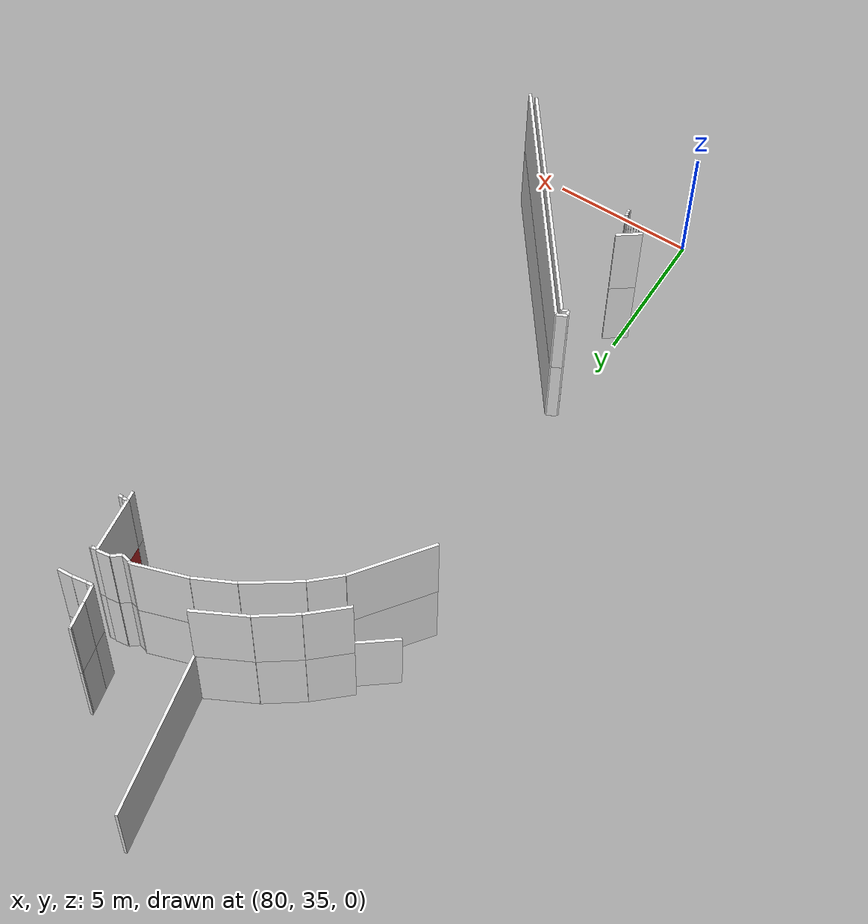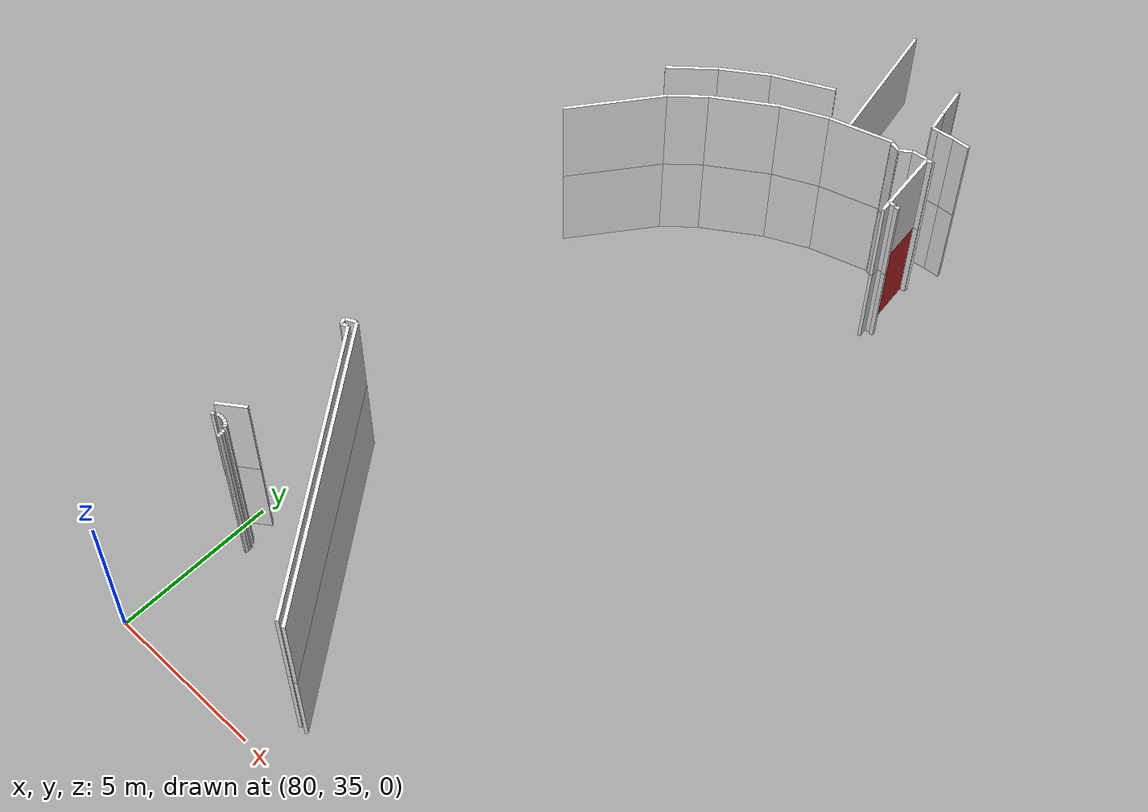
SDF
<sdf version="1.6">
 <world name="default">
  <model name="wall_87.9_57.8_1.5">
   <static>true</static>
   <pose>87.93499999999767 57.77499999990687 1.5 0 0 -1.4509545189031208</pose>
   <link name="link">
    <visual name="visual">
     <geometry><box><size>1.9237983263743257 0.1 3</size></box></geometry>
     <material>
      <script><uri>file://media/materials/scripts/gazebo.material</uri><name>Gazebo/Red</name></script>
     </material>
    </visual>
    <collision name="collision"><geometry><box><size>1.9237983263743257 0.1 3</size></box></geometry></collision>
   </link>
  </model>
  <model name="wall_80.4_43.4_1.5">
   <static>true</static>
   <pose>80.37000000002445 43.43000000016764 1.5 0 0 0.4182243299392765</pose>
   <link name="link">
    <visual name="visual">
     <geometry><box><size>0.19697715605979885 0.1 3</size></box></geometry>
     <material>
      <script><uri>file://media/materials/scripts/gazebo.material</uri><name>Gazebo/White</name></script>
     </material>
    </visual>
    <collision name="collision"><geometry><box><size>0.19697715605979885 0.1 3</size></box></geometry></collision>
   </link>
  </model>
  <model name="wall_83.1_39.9_1.5">
   <static>true</static>
   <pose>83.10500000001048 39.88000000012107 1.5 0 0 -0.9358171018698879</pose>
   <link name="link">
    <visual name="visual">
     <geometry><box><size>8.918323833668834 0.1 3</size></box></geometry>
     <material>
      <script><uri>file://media/materials/scripts/gazebo.material</uri><name>Gazebo/White</name></script>
     </material>
    </visual>
    <collision name="collision"><geometry><box><size>8.918323833668834 0.1 3</size></box></geometry></collision>
   </link>
  </model>
  <model name="wall_80.6_38.8_1.5">
   <static>true</static>
   <pose>80.64500000001863 38.80499999993481 1.5 0 0 1.4601391059049407</pose>
   <link name="link">
    <visual name="visual">
     <geometry><box><size>0.0905538516971156 0.1 3</size></box></geometry>
     <material>
      <script><uri>file://media/materials/scripts/gazebo.material</uri><name>Gazebo/White</name></script>
     </material>
    </visual>
    <collision name="collision"><geometry><box><size>0.0905538516971156 0.1 3</size></box></geometry></collision>
   </link>
  </model>
  <model name="wall_80.6_38.9_1.5">
   <static>true</static>
   <pose>80.64500000001863 38.890000000130385 1.5 0 0 1.695151321341658</pose>
   <link name="link">
    <visual name="visual">
     <geometry><box><size>0.08062257755807112 0.1 3</size></box></geometry>
     <material>
      <script><uri>file://media/materials/scripts/gazebo.material</uri><name>Gazebo/White</name></script>
     </material>
    </visual>
    <collision name="collision"><geometry><box><size>0.08062257755807112 0.1 3</size></box></geometry></collision>
   </link>
  </model>
  <model name="wall_80.6_39.0_1.5">
   <static>true</static>
   <pose>80.625 38.96999999997206 1.5 0 0 1.9295669989791453</pose>
   <link name="link">
    <visual name="visual">
     <geometry><box><size>0.0854400370967353 0.1 3</size></box></geometry>
     <material>
      <script><uri>file://media/materials/scripts/gazebo.material</uri><name>Gazebo/White</name></script>
     </material>
    </visual>
    <collision name="collision"><geometry><box><size>0.0854400370967353 0.1 3</size></box></geometry></collision>
   </link>
  </model>
  <model name="wall_80.5_39.1_1.5">
   <static>true</static>
   <pose>80.53500000000349 39.110000000102445 1.5 0 0 2.2655346024190655</pose>
   <link name="link">
    <visual name="visual">
     <geometry><box><size>0.07810249679454152 0.1 3</size></box></geometry>
     <material>
      <script><uri>file://media/materials/scripts/gazebo.material</uri><name>Gazebo/White</name></script>
     </material>
    </visual>
    <collision name="collision"><geometry><box><size>0.07810249679454152 0.1 3</size></box></geometry></collision>
   </link>
  </model>
  <model name="wall_80.5_39.2_1.5">
   <static>true</static>
   <pose>80.47500000000582 39.16500000003725 1.5 0 0 2.521343169416129</pose>
   <link name="link">
    <visual name="visual">
     <geometry><box><size>0.08602325256784608 0.1 3</size></box></geometry>
     <material>
      <script><uri>file://media/materials/scripts/gazebo.material</uri><name>Gazebo/White</name></script>
     </material>
    </visual>
    <collision name="collision"><geometry><box><size>0.08602325256784608 0.1 3</size></box></geometry></collision>
   </link>
  </model>
  <model name="wall_80.4_39.2_1.5">
   <static>true</static>
   <pose>80.39999999999418 39.205000000074506 1.5 0 0 2.7828219805284427</pose>
   <link name="link">
    <visual name="visual">
     <geometry><box><size>0.08544003755999831 0.1 3</size></box></geometry>
     <material>
      <script><uri>file://media/materials/scripts/gazebo.material</uri><name>Gazebo/White</name></script>
     </material>
    </visual>
    <collision name="collision"><geometry><box><size>0.08544003755999831 0.1 3</size></box></geometry></collision>
   </link>
  </model>
  <model name="wall_80.3_39.2_1.5">
   <static>true</static>
   <pose>80.32000000000698 39.22500000009313 1.5 0 0 3.0172376617295393</pose>
   <link name="link">
    <visual name="visual">
     <geometry><box><size>0.08062257741367569 0.1 3</size></box></geometry>
     <material>
      <script><uri>file://media/materials/scripts/gazebo.material</uri><name>Gazebo/White</name></script>
     </material>
    </visual>
    <collision name="collision"><geometry><box><size>0.08062257741367569 0.1 3</size></box></geometry></collision>
   </link>
  </model>
  <model name="wall_80.2_39.2_1.5">
   <static>true</static>
   <pose>80.23500000001513 39.22999999998137 1.5 0 0 3.141592653589793</pose>
   <link name="link">
    <visual name="visual">
     <geometry><box><size>0.09000000002561137 0.1 3</size></box></geometry>
     <material>
      <script><uri>file://media/materials/scripts/gazebo.material</uri><name>Gazebo/White</name></script>
     </material>
    </visual>
    <collision name="collision"><geometry><box><size>0.09000000002561137 0.1 3</size></box></geometry></collision>
   </link>
  </model>
  <model name="wall_80.1_39.2_1.5">
   <static>true</static>
   <pose>80.14999999999418 39.21999999997206 1.5 0 0 -2.8966139902917303</pose>
   <link name="link">
    <visual name="visual">
     <geometry><box><size>0.08246211253268232 0.1 3</size></box></geometry>
     <material>
      <script><uri>file://media/materials/scripts/gazebo.material</uri><name>Gazebo/White</name></script>
     </material>
    </visual>
    <collision name="collision"><geometry><box><size>0.08246211253268232 0.1 3</size></box></geometry></collision>
   </link>
  </model>
  <model name="wall_80.2_39.6_1.5">
   <static>true</static>
   <pose>80.15499999999884 39.64500000001863 1.5 0 0 0.6279812908789976</pose>
   <link name="link">
    <visual name="visual">
     <geometry><box><size>0.9021086410927485 0.1 3</size></box></geometry>
     <material>
      <script><uri>file://media/materials/scripts/gazebo.material</uri><name>Gazebo/White</name></script>
     </material>
    </visual>
    <collision name="collision"><geometry><box><size>0.9021086410927485 0.1 3</size></box></geometry></collision>
   </link>
  </model>
  <model name="wall_88.0_58.8_1.5">
   <static>true</static>
   <pose>88.01500000001397 58.769999999785796 1.5 0 0 -1.1071487177940904</pose>
   <link name="link">
    <visual name="visual">
     <geometry><box><size>0.022360679795822902 0.1 3</size></box></geometry>
     <material>
      <script><uri>file://media/materials/scripts/gazebo.material</uri><name>Gazebo/White</name></script>
     </material>
    </visual>
    <collision name="collision">
     <geometry><box><size>0.022360679795822902 0.1 3</size></box></geometry>
    </collision>
   </link>
  </model>
  <model name="wall_87.9_58.7_1.5">
   <static>true</static>
   <pose>87.9200000000128 58.74499999987893 1.5 0 0 -2.992702706990747</pose>
   <link name="link">
    <visual name="visual">
     <geometry><box><size>0.20223748414268597 0.1 3</size></box></geometry>
     <material>
      <script><uri>file://media/materials/scripts/gazebo.material</uri><name>Gazebo/White</name></script>
     </material>
    </visual>
    <collision name="collision"><geometry><box><size>0.20223748414268597 0.1 3</size></box></geometry></collision>
   </link>
  </model>
  <model name="wall_88.1_56.8_1.5">
   <static>true</static>
   <pose>88.14499999998952 56.83499999996275 1.5 0 0 0.15660187831921837</pose>
   <link name="link">
    <visual name="visual">
     <geometry><box><size>0.19235384065968367 0.1 3</size></box></geometry>
     <material>
      <script><uri>file://media/materials/scripts/gazebo.material</uri><name>Gazebo/White</name></script>
     </material>
    </visual>
    <collision name="collision"><geometry><box><size>0.19235384065968367 0.1 3</size></box></geometry></collision>
   </link>
  </model>
  <model name="wall_88.2_56.8_1.5">
   <static>true</static>
   <pose>88.24499999999534 56.83499999996275 1.5 0 0 -1.2490457747265609</pose>
   <link name="link">
    <visual name="visual">
     <geometry><box><size>0.031622776852017344 0.1 3</size></box></geometry>
     <material>
      <script><uri>file://media/materials/scripts/gazebo.material</uri><name>Gazebo/White</name></script>
     </material>
    </visual>
    <collision name="collision">
     <geometry><box><size>0.031622776852017344 0.1 3</size></box></geometry>
    </collision>
   </link>
  </model>
  <model name="wall_88.3_56.8_1.5">
   <static>true</static>
   <pose>88.31500000000233 56.824999999953434 1.5 0 0 0.07677189311872727</pose>
   <link name="link">
    <visual name="visual">
     <geometry><box><size>0.13038404812726748 0.1 3</size></box></geometry>
     <material>
      <script><uri>file://media/materials/scripts/gazebo.material</uri><name>Gazebo/White</name></script>
     </material>
    </visual>
    <collision name="collision"><geometry><box><size>0.13038404812726748 0.1 3</size></box></geometry></collision>
   </link>
  </model>
  <model name="wall_80.1_54.2_1.5">
   <static>true</static>
   <pose>80.07499999998254 54.16500000003725 1.5 0 0 0.9359099816356786</pose>
   <link name="link">
    <visual name="visual">
     <geometry><box><size>3.018111992368174 0.1 3</size></box></geometry>
     <material>
      <script><uri>file://media/materials/scripts/gazebo.material</uri><name>Gazebo/White</name></script>
     </material>
    </visual>
    <collision name="collision"><geometry><box><size>3.018111992368174 0.1 3</size></box></geometry></collision>
   </link>
  </model>
  <model name="wall_81.4_55.8_1.5">
   <static>true</static>
   <pose>81.41499999997905 55.79000000003725 1.5 0 0 0.7444853337953005</pose>
   <link name="link">
    <visual name="visual">
     <geometry><box><size>1.2101652781804741 0.1 3</size></box></geometry>
     <material>
      <script><uri>file://media/materials/scripts/gazebo.material</uri><name>Gazebo/White</name></script>
     </material>
    </visual>
    <collision name="collision"><geometry><box><size>1.2101652781804741 0.1 3</size></box></geometry></collision>
   </link>
  </model>
  <model name="wall_82.7_56.8_1.5">
   <static>true</static>
   <pose>82.7049999999872 56.78000000002794 1.5 0 0 0.6015335773054936</pose>
   <link name="link">
    <visual name="visual">
     <geometry><box><size>2.0498048685846277 0.1 3</size></box></geometry>
     <material>
      <script><uri>file://media/materials/scripts/gazebo.material</uri><name>Gazebo/White</name></script>
     </material>
    </visual>
    <collision name="collision"><geometry><box><size>2.0498048685846277 0.1 3</size></box></geometry></collision>
   </link>
  </model>
  <model name="wall_84.2_57.7_1.5">
   <static>true</static>
   <pose>84.20999999999185 57.67999999993481 1.5 0 0 0.45145309163045305</pose>
   <link name="link">
    <visual name="visual">
     <geometry><box><size>1.4669696657345486 0.1 3</size></box></geometry>
     <material>
      <script><uri>file://media/materials/scripts/gazebo.material</uri><name>Gazebo/White</name></script>
     </material>
    </visual>
    <collision name="collision"><geometry><box><size>1.4669696657345486 0.1 3</size></box></geometry></collision>
   </link>
  </model>
  <model name="wall_85.8_58.3_1.5">
   <static>true</static>
   <pose>85.79000000000815 58.29000000003725 1.5 0 0 0.30535858012147843</pose>
   <link name="link">
    <visual name="visual">
     <geometry><box><size>1.9292485584238948 0.1 3</size></box></geometry>
     <material>
      <script><uri>file://media/materials/scripts/gazebo.material</uri><name>Gazebo/White</name></script>
     </material>
    </visual>
    <collision name="collision"><geometry><box><size>1.9292485584238948 0.1 3</size></box></geometry></collision>
   </link>
  </model>
  <model name="wall_86.7_58.6_1.5">
   <static>true</static>
   <pose>86.72500000000582 58.55499999993481 1.5 0 0 -1.0303768294346956</pose>
   <link name="link">
    <visual name="visual">
     <geometry><box><size>0.058309519172461015 0.1 3</size></box></geometry>
     <material>
      <script><uri>file://media/materials/scripts/gazebo.material</uri><name>Gazebo/White</name></script>
     </material>
    </visual>
    <collision name="collision">
     <geometry><box><size>0.058309519172461015 0.1 3</size></box></geometry>
    </collision>
   </link>
  </model>
  <model name="wall_86.9_58.5_1.5">
   <static>true</static>
   <pose>86.88999999998487 58.49499999987893 1.5 0 0 -0.22923193275564116</pose>
   <link name="link">
    <visual name="visual">
     <geometry><box><size>0.30805843596555793 0.1 3</size></box></geometry>
     <material>
      <script><uri>file://media/materials/scripts/gazebo.material</uri><name>Gazebo/White</name></script>
     </material>
    </visual>
    <collision name="collision"><geometry><box><size>0.30805843596555793 0.1 3</size></box></geometry></collision>
   </link>
  </model>
  <model name="wall_87.2_58.6_1.5">
   <static>true</static>
   <pose>87.19000000000233 58.580000000074506 1.5 0 0 0.6747409426021391</pose>
   <link name="link">
    <visual name="visual">
     <geometry><box><size>0.38418745442196317 0.1 3</size></box></geometry>
     <material>
      <script><uri>file://media/materials/scripts/gazebo.material</uri><name>Gazebo/White</name></script>
     </material>
    </visual>
    <collision name="collision"><geometry><box><size>0.38418745442196317 0.1 3</size></box></geometry></collision>
   </link>
  </model>
  <model name="wall_87.6_58.7_1.5">
   <static>true</static>
   <pose>87.57500000001164 58.72999999998137 1.5 0 0 0.12697278876365076</pose>
   <link name="link">
    <visual name="visual">
     <geometry><box><size>0.4738143095396791 0.1 3</size></box></geometry>
     <material>
      <script><uri>file://media/materials/scripts/gazebo.material</uri><name>Gazebo/White</name></script>
     </material>
    </visual>
    <collision name="collision"><geometry><box><size>0.4738143095396791 0.1 3</size></box></geometry></collision>
   </link>
  </model>
  <model name="wall_87.8_58.7_1.5">
   <static>true</static>
   <pose>87.81500000000233 58.74499999987893 1.5 0 0 -1.249045770069948</pose>
   <link name="link">
    <visual name="visual">
     <geometry><box><size>0.031622776410252254 0.1 3</size></box></geometry>
     <material>
      <script><uri>file://media/materials/scripts/gazebo.material</uri><name>Gazebo/White</name></script>
     </material>
    </visual>
    <collision name="collision">
     <geometry><box><size>0.031622776410252254 0.1 3</size></box></geometry>
    </collision>
   </link>
  </model>
  <model name="wall_88.1_56.7_1.5">
   <static>true</static>
   <pose>88.07499999998254 56.65500000002794 1.5 0 0 -1.4204248986466843</pose>
   <link name="link">
    <visual name="visual">
     <geometry><box><size>0.33376638497708727 0.1 3</size></box></geometry>
     <material>
      <script><uri>file://media/materials/scripts/gazebo.material</uri><name>Gazebo/White</name></script>
     </material>
    </visual>
    <collision name="collision"><geometry><box><size>0.33376638497708727 0.1 3</size></box></geometry></collision>
   </link>
  </model>
  <model name="wall_83.3_40.0_1.5">
   <static>true</static>
   <pose>83.26500000001397 40.0 1.5 0 0 2.2047677262171748</pose>
   <link name="link">
    <visual name="visual">
     <geometry><box><size>9.234419310697987 0.1 3</size></box></geometry>
     <material>
      <script><uri>file://media/materials/scripts/gazebo.material</uri><name>Gazebo/White</name></script>
     </material>
    </visual>
    <collision name="collision"><geometry><box><size>9.234419310697987 0.1 3</size></box></geometry></collision>
   </link>
  </model>
  <model name="wall_80.4_43.6_1.5">
   <static>true</static>
   <pose>80.36500000001979 43.640000000130385 1.5 0 0 -2.6901395616910224</pose>
   <link name="link">
    <visual name="visual">
     <geometry><box><size>0.3667424164975201 0.1 3</size></box></geometry>
     <material>
      <script><uri>file://media/materials/scripts/gazebo.material</uri><name>Gazebo/White</name></script>
     </material>
    </visual>
    <collision name="collision"><geometry><box><size>0.3667424164975201 0.1 3</size></box></geometry></collision>
   </link>
  </model>
  <model name="wall_80.2_43.5_1.5">
   <static>true</static>
   <pose>80.24000000001979 43.47500000009313 1.5 0 0 -1.1309537437318191</pose>
   <link name="link">
    <visual name="visual">
     <geometry><box><size>0.1878829422200848 0.1 3</size></box></geometry>
     <material>
      <script><uri>file://media/materials/scripts/gazebo.material</uri><name>Gazebo/White</name></script>
     </material>
    </visual>
    <collision name="collision"><geometry><box><size>0.1878829422200848 0.1 3</size></box></geometry></collision>
   </link>
  </model>
  <model name="wall_88.1_59.9_1.5">
   <static>true</static>
   <pose>88.13500000000931 59.89500000001863 1.5 0 0 -3.08283683036559</pose>
   <link name="link">
    <visual name="visual">
     <geometry><box><size>0.5108815910024022 0.1 3</size></box></geometry>
     <material>
      <script><uri>file://media/materials/scripts/gazebo.material</uri><name>Gazebo/White</name></script>
     </material>
    </visual>
    <collision name="collision"><geometry><box><size>0.5108815910024022 0.1 3</size></box></geometry></collision>
   </link>
  </model>
  <model name="wall_87.6_59.8_1.5">
   <static>true</static>
   <pose>87.63500000000931 59.84499999997206 1.5 0 0 -2.9996955993182444</pose>
   <link name="link">
    <visual name="visual">
     <geometry><box><size>0.494974746797656 0.1 3</size></box></geometry>
     <material>
      <script><uri>file://media/materials/scripts/gazebo.material</uri><name>Gazebo/White</name></script>
     </material>
    </visual>
    <collision name="collision"><geometry><box><size>0.494974746797656 0.1 3</size></box></geometry></collision>
   </link>
  </model>
  <model name="wall_87.3_59.8_1.5">
   <static>true</static>
   <pose>87.29000000000815 59.800000000046566 1.5 0 0 -3.0419240010121844</pose>
   <link name="link">
    <visual name="visual">
     <geometry><box><size>0.20099751243585498 0.1 3</size></box></geometry>
     <material>
      <script><uri>file://media/materials/scripts/gazebo.material</uri><name>Gazebo/White</name></script>
     </material>
    </visual>
    <collision name="collision"><geometry><box><size>0.20099751243585498 0.1 3</size></box></geometry></collision>
   </link>
  </model>
  <model name="wall_87.1_60.1_1.5">
   <static>true</static>
   <pose>87.125 60.10000000009313 1.5 0 0 1.7774795452501364</pose>
   <link name="link">
    <visual name="visual">
     <geometry><box><size>0.6334824386988099 0.1 3</size></box></geometry>
     <material>
      <script><uri>file://media/materials/scripts/gazebo.material</uri><name>Gazebo/White</name></script>
     </material>
    </visual>
    <collision name="collision"><geometry><box><size>0.6334824386988099 0.1 3</size></box></geometry></collision>
   </link>
  </model>
  <model name="wall_87.0_60.9_1.5">
   <static>true</static>
   <pose>86.97500000000582 60.85000000009313 1.5 0 0 1.7616274295219554</pose>
   <link name="link">
    <visual name="visual">
     <geometry><box><size>0.896270048477446 0.1 3</size></box></geometry>
     <material>
      <script><uri>file://media/materials/scripts/gazebo.material</uri><name>Gazebo/White</name></script>
     </material>
    </visual>
    <collision name="collision"><geometry><box><size>0.896270048477446 0.1 3</size></box></geometry></collision>
   </link>
  </model>
  <model name="wall_86.9_61.3_1.5">
   <static>true</static>
   <pose>86.88500000000931 61.32000000006519 1.5 0 0 1.7359450042095235</pose>
   <link name="link">
    <visual name="visual">
     <geometry><box><size>0.060827625359632334 0.1 3</size></box></geometry>
     <material>
      <script><uri>file://media/materials/scripts/gazebo.material</uri><name>Gazebo/White</name></script>
     </material>
    </visual>
    <collision name="collision">
     <geometry><box><size>0.060827625359632334 0.1 3</size></box></geometry>
    </collision>
   </link>
  </model>
  <model name="wall_83.7_61.8_1.5">
   <static>true</static>
   <pose>83.73999999999069 61.75500000012107 1.5 0 0 -1.3737435848915833</pose>
   <link name="link">
    <visual name="visual">
     <geometry><box><size>5.720707998012715 0.1 3</size></box></geometry>
     <material>
      <script><uri>file://media/materials/scripts/gazebo.material</uri><name>Gazebo/White</name></script>
     </material>
    </visual>
    <collision name="collision"><geometry><box><size>5.720707998012715 0.1 3</size></box></geometry></collision>
   </link>
  </model>
  <model name="wall_83.4_58.5_1.5">
   <static>true</static>
   <pose>83.44500000000698 58.515000000130385 1.5 0 0 -2.6709521515229318</pose>
   <link name="link">
    <visual name="visual">
     <geometry><box><size>1.9185932346558128 0.1 3</size></box></geometry>
     <material>
      <script><uri>file://media/materials/scripts/gazebo.material</uri><name>Gazebo/White</name></script>
     </material>
    </visual>
    <collision name="collision"><geometry><box><size>1.9185932346558128 0.1 3</size></box></geometry></collision>
   </link>
  </model>
  <model name="wall_82.0_57.6_1.5">
   <static>true</static>
   <pose>81.96500000002561 57.63500000000931 1.5 0 0 -2.52285831789347</pose>
   <link name="link">
    <visual name="visual">
     <geometry><box><size>1.5344705928208873 0.1 3</size></box></geometry>
     <material>
      <script><uri>file://media/materials/scripts/gazebo.material</uri><name>Gazebo/White</name></script>
     </material>
    </visual>
    <collision name="collision"><geometry><box><size>1.5344705928208873 0.1 3</size></box></geometry></collision>
   </link>
  </model>
  <model name="wall_80.8_56.7_1.5">
   <static>true</static>
   <pose>80.76500000001397 56.669999999925494 1.5 0 0 -2.4063806244587402</pose>
   <link name="link">
    <visual name="visual">
     <geometry><box><size>1.5505160431711233 0.1 3</size></box></geometry>
     <material>
      <script><uri>file://media/materials/scripts/gazebo.material</uri><name>Gazebo/White</name></script>
     </material>
    </visual>
    <collision name="collision"><geometry><box><size>1.5505160431711233 0.1 3</size></box></geometry></collision>
   </link>
  </model>
  <model name="wall_81.7_57.0_1.5">
   <static>true</static>
   <pose>81.74499999999534 56.97000000020489 1.5 0 0 0.6592795022457629</pose>
   <link name="link">
    <visual name="visual">
     <geometry><box><size>6.4648047147274434 0.1 3</size></box></geometry>
     <material>
      <script><uri>file://media/materials/scripts/gazebo.material</uri><name>Gazebo/White</name></script>
     </material>
    </visual>
    <collision name="collision"><geometry><box><size>6.4648047147274434 0.1 3</size></box></geometry></collision>
   </link>
  </model>
  <model name="wall_80.4_43.4_4.5">
   <static>true</static>
   <pose>80.37000000002445 43.43000000016764 4.5 0 0 0.4182243299392765</pose>
   <link name="link">
    <visual name="visual">
     <geometry><box><size>0.19697715605979885 0.1 3</size></box></geometry>
     <material>
      <script><uri>file://media/materials/scripts/gazebo.material</uri><name>Gazebo/White</name></script>
     </material>
    </visual>
    <collision name="collision"><geometry><box><size>0.19697715605979885 0.1 3</size></box></geometry></collision>
   </link>
  </model>
  <model name="wall_83.1_39.9_4.5">
   <static>true</static>
   <pose>83.10500000001048 39.88000000012107 4.5 0 0 -0.9358171018698879</pose>
   <link name="link">
    <visual name="visual">
     <geometry><box><size>8.918323833668834 0.1 3</size></box></geometry>
     <material>
      <script><uri>file://media/materials/scripts/gazebo.material</uri><name>Gazebo/White</name></script>
     </material>
    </visual>
    <collision name="collision"><geometry><box><size>8.918323833668834 0.1 3</size></box></geometry></collision>
   </link>
  </model>
  <model name="wall_80.6_38.8_4.5">
   <static>true</static>
   <pose>80.64500000001863 38.80499999993481 4.5 0 0 1.4601391059049407</pose>
   <link name="link">
    <visual name="visual">
     <geometry><box><size>0.0905538516971156 0.1 3</size></box></geometry>
     <material>
      <script><uri>file://media/materials/scripts/gazebo.material</uri><name>Gazebo/White</name></script>
     </material>
    </visual>
    <collision name="collision"><geometry><box><size>0.0905538516971156 0.1 3</size></box></geometry></collision>
   </link>
  </model>
  <model name="wall_80.6_38.9_4.5">
   <static>true</static>
   <pose>80.64500000001863 38.890000000130385 4.5 0 0 1.695151321341658</pose>
   <link name="link">
    <visual name="visual">
     <geometry><box><size>0.08062257755807112 0.1 3</size></box></geometry>
     <material>
      <script><uri>file://media/materials/scripts/gazebo.material</uri><name>Gazebo/White</name></script>
     </material>
    </visual>
    <collision name="collision"><geometry><box><size>0.08062257755807112 0.1 3</size></box></geometry></collision>
   </link>
  </model>
  <model name="wall_80.6_39.0_4.5">
   <static>true</static>
   <pose>80.625 38.96999999997206 4.5 0 0 1.9295669989791453</pose>
   <link name="link">
    <visual name="visual">
     <geometry><box><size>0.0854400370967353 0.1 3</size></box></geometry>
     <material>
      <script><uri>file://media/materials/scripts/gazebo.material</uri><name>Gazebo/White</name></script>
     </material>
    </visual>
    <collision name="collision"><geometry><box><size>0.0854400370967353 0.1 3</size></box></geometry></collision>
   </link>
  </model>
  <model name="wall_80.5_39.1_4.5">
   <static>true</static>
   <pose>80.53500000000349 39.110000000102445 4.5 0 0 2.2655346024190655</pose>
   <link name="link">
    <visual name="visual">
     <geometry><box><size>0.07810249679454152 0.1 3</size></box></geometry>
     <material>
      <script><uri>file://media/materials/scripts/gazebo.material</uri><name>Gazebo/White</name></script>
     </material>
    </visual>
    <collision name="collision"><geometry><box><size>0.07810249679454152 0.1 3</size></box></geometry></collision>
   </link>
  </model>
  <model name="wall_80.5_39.2_4.5">
   <static>true</static>
   <pose>80.47500000000582 39.16500000003725 4.5 0 0 2.521343169416129</pose>
   <link name="link">
    <visual name="visual">
     <geometry><box><size>0.08602325256784608 0.1 3</size></box></geometry>
     <material>
      <script><uri>file://media/materials/scripts/gazebo.material</uri><name>Gazebo/White</name></script>
     </material>
    </visual>
    <collision name="collision"><geometry><box><size>0.08602325256784608 0.1 3</size></box></geometry></collision>
   </link>
  </model>
  <model name="wall_80.4_39.2_4.5">
   <static>true</static>
   <pose>80.39999999999418 39.205000000074506 4.5 0 0 2.7828219805284427</pose>
   <link name="link">
    <visual name="visual">
     <geometry><box><size>0.08544003755999831 0.1 3</size></box></geometry>
     <material>
      <script><uri>file://media/materials/scripts/gazebo.material</uri><name>Gazebo/White</name></script>
     </material>
    </visual>
    <collision name="collision"><geometry><box><size>0.08544003755999831 0.1 3</size></box></geometry></collision>
   </link>
  </model>
  <model name="wall_80.3_39.2_4.5">
   <static>true</static>
   <pose>80.32000000000698 39.22500000009313 4.5 0 0 3.0172376617295393</pose>
   <link name="link">
    <visual name="visual">
     <geometry><box><size>0.08062257741367569 0.1 3</size></box></geometry>
     <material>
      <script><uri>file://media/materials/scripts/gazebo.material</uri><name>Gazebo/White</name></script>
     </material>
    </visual>
    <collision name="collision"><geometry><box><size>0.08062257741367569 0.1 3</size></box></geometry></collision>
   </link>
  </model>
  <model name="wall_80.2_39.2_4.5">
   <static>true</static>
   <pose>80.23500000001513 39.22999999998137 4.5 0 0 3.141592653589793</pose>
   <link name="link">
    <visual name="visual">
     <geometry><box><size>0.09000000002561137 0.1 3</size></box></geometry>
     <material>
      <script><uri>file://media/materials/scripts/gazebo.material</uri><name>Gazebo/White</name></script>
     </material>
    </visual>
    <collision name="collision"><geometry><box><size>0.09000000002561137 0.1 3</size></box></geometry></collision>
   </link>
  </model>
  <model name="wall_80.1_39.2_4.5">
   <static>true</static>
   <pose>80.14999999999418 39.21999999997206 4.5 0 0 -2.8966139902917303</pose>
   <link name="link">
    <visual name="visual">
     <geometry><box><size>0.08246211253268232 0.1 3</size></box></geometry>
     <material>
      <script><uri>file://media/materials/scripts/gazebo.material</uri><name>Gazebo/White</name></script>
     </material>
    </visual>
    <collision name="collision"><geometry><box><size>0.08246211253268232 0.1 3</size></box></geometry></collision>
   </link>
  </model>
  <model name="wall_80.0_39.1_4.5">
   <static>true</static>
   <pose>80.00499999997555 39.14500000001863 4.5 0 0 -2.521343169416129</pose>
   <link name="link">
    <visual name="visual">
     <geometry><box><size>0.08602325256784608 0.1 3</size></box></geometry>
     <material>
      <script><uri>file://media/materials/scripts/gazebo.material</uri><name>Gazebo/White</name></script>
     </material>
    </visual>
    <collision name="collision"><geometry><box><size>0.08602325256784608 0.1 3</size></box></geometry></collision>
   </link>
  </model>
  <model name="wall_80.2_39.6_4.5">
   <static>true</static>
   <pose>80.15499999999884 39.64500000001863 4.5 0 0 0.6279812908789976</pose>
   <link name="link">
    <visual name="visual">
     <geometry><box><size>0.9021086410927485 0.1 3</size></box></geometry>
     <material>
      <script><uri>file://media/materials/scripts/gazebo.material</uri><name>Gazebo/White</name></script>
     </material>
    </visual>
    <collision name="collision"><geometry><box><size>0.9021086410927485 0.1 3</size></box></geometry></collision>
   </link>
  </model>
  <model name="wall_88.0_58.8_4.5">
   <static>true</static>
   <pose>88.01500000001397 58.769999999785796 4.5 0 0 -1.1071487177940904</pose>
   <link name="link">
    <visual name="visual">
     <geometry><box><size>0.022360679795822902 0.1 3</size></box></geometry>
     <material>
      <script><uri>file://media/materials/scripts/gazebo.material</uri><name>Gazebo/White</name></script>
     </material>
    </visual>
    <collision name="collision">
     <geometry><box><size>0.022360679795822902 0.1 3</size></box></geometry>
    </collision>
   </link>
  </model>
  <model name="wall_87.9_58.7_4.5">
   <static>true</static>
   <pose>87.9200000000128 58.74499999987893 4.5 0 0 -2.992702706990747</pose>
   <link name="link">
    <visual name="visual">
     <geometry><box><size>0.20223748414268597 0.1 3</size></box></geometry>
     <material>
      <script><uri>file://media/materials/scripts/gazebo.material</uri><name>Gazebo/White</name></script>
     </material>
    </visual>
    <collision name="collision"><geometry><box><size>0.20223748414268597 0.1 3</size></box></geometry></collision>
   </link>
  </model>
  <model name="wall_87.9_57.8_4.5">
   <static>true</static>
   <pose>87.93499999999767 57.77499999990687 4.5 0 0 -1.4509545189031208</pose>
   <link name="link">
    <visual name="visual">
     <geometry><box><size>1.9237983263743257 0.1 3</size></box></geometry>
     <material>
      <script><uri>file://media/materials/scripts/gazebo.material</uri><name>Gazebo/White</name></script>
     </material>
    </visual>
    <collision name="collision"><geometry><box><size>1.9237983263743257 0.1 3</size></box></geometry></collision>
   </link>
  </model>
  <model name="wall_88.1_56.8_4.5">
   <static>true</static>
   <pose>88.14499999998952 56.83499999996275 4.5 0 0 0.15660187831921837</pose>
   <link name="link">
    <visual name="visual">
     <geometry><box><size>0.19235384065968367 0.1 3</size></box></geometry>
     <material>
      <script><uri>file://media/materials/scripts/gazebo.material</uri><name>Gazebo/White</name></script>
     </material>
    </visual>
    <collision name="collision"><geometry><box><size>0.19235384065968367 0.1 3</size></box></geometry></collision>
   </link>
  </model>
  <model name="wall_88.2_56.8_4.5">
   <static>true</static>
   <pose>88.24499999999534 56.83499999996275 4.5 0 0 -1.2490457747265609</pose>
   <link name="link">
    <visual name="visual">
     <geometry><box><size>0.031622776852017344 0.1 3</size></box></geometry>
     <material>
      <script><uri>file://media/materials/scripts/gazebo.material</uri><name>Gazebo/White</name></script>
     </material>
    </visual>
    <collision name="collision">
     <geometry><box><size>0.031622776852017344 0.1 3</size></box></geometry>
    </collision>
   </link>
  </model>
  <model name="wall_88.3_56.8_4.5">
   <static>true</static>
   <pose>88.31500000000233 56.824999999953434 4.5 0 0 0.07677189311872727</pose>
   <link name="link">
    <visual name="visual">
     <geometry><box><size>0.13038404812726748 0.1 3</size></box></geometry>
     <material>
      <script><uri>file://media/materials/scripts/gazebo.material</uri><name>Gazebo/White</name></script>
     </material>
    </visual>
    <collision name="collision"><geometry><box><size>0.13038404812726748 0.1 3</size></box></geometry></collision>
   </link>
  </model>
  <model name="wall_80.1_54.2_4.5">
   <static>true</static>
   <pose>80.07499999998254 54.16500000003725 4.5 0 0 0.9359099816356786</pose>
   <link name="link">
    <visual name="visual">
     <geometry><box><size>3.018111992368174 0.1 3</size></box></geometry>
     <material>
      <script><uri>file://media/materials/scripts/gazebo.material</uri><name>Gazebo/White</name></script>
     </material>
    </visual>
    <collision name="collision"><geometry><box><size>3.018111992368174 0.1 3</size></box></geometry></collision>
   </link>
  </model>
  <model name="wall_81.4_55.8_4.5">
   <static>true</static>
   <pose>81.41499999997905 55.79000000003725 4.5 0 0 0.7444853337953005</pose>
   <link name="link">
    <visual name="visual">
     <geometry><box><size>1.2101652781804741 0.1 3</size></box></geometry>
     <material>
      <script><uri>file://media/materials/scripts/gazebo.material</uri><name>Gazebo/White</name></script>
     </material>
    </visual>
    <collision name="collision"><geometry><box><size>1.2101652781804741 0.1 3</size></box></geometry></collision>
   </link>
  </model>
  <model name="wall_82.7_56.8_4.5">
   <static>true</static>
   <pose>82.7049999999872 56.78000000002794 4.5 0 0 0.6015335773054936</pose>
   <link name="link">
    <visual name="visual">
     <geometry><box><size>2.0498048685846277 0.1 3</size></box></geometry>
     <material>
      <script><uri>file://media/materials/scripts/gazebo.material</uri><name>Gazebo/White</name></script>
     </material>
    </visual>
    <collision name="collision"><geometry><box><size>2.0498048685846277 0.1 3</size></box></geometry></collision>
   </link>
  </model>
  <model name="wall_84.2_57.7_4.5">
   <static>true</static>
   <pose>84.20999999999185 57.67999999993481 4.5 0 0 0.45145309163045305</pose>
   <link name="link">
    <visual name="visual">
     <geometry><box><size>1.4669696657345486 0.1 3</size></box></geometry>
     <material>
      <script><uri>file://media/materials/scripts/gazebo.material</uri><name>Gazebo/White</name></script>
     </material>
    </visual>
    <collision name="collision"><geometry><box><size>1.4669696657345486 0.1 3</size></box></geometry></collision>
   </link>
  </model>
  <model name="wall_85.8_58.3_4.5">
   <static>true</static>
   <pose>85.79000000000815 58.29000000003725 4.5 0 0 0.30535858012147843</pose>
   <link name="link">
    <visual name="visual">
     <geometry><box><size>1.9292485584238948 0.1 3</size></box></geometry>
     <material>
      <script><uri>file://media/materials/scripts/gazebo.material</uri><name>Gazebo/White</name></script>
     </material>
    </visual>
    <collision name="collision"><geometry><box><size>1.9292485584238948 0.1 3</size></box></geometry></collision>
   </link>
  </model>
  <model name="wall_86.7_58.6_4.5">
   <static>true</static>
   <pose>86.72500000000582 58.55499999993481 4.5 0 0 -1.0303768294346956</pose>
   <link name="link">
    <visual name="visual">
     <geometry><box><size>0.058309519172461015 0.1 3</size></box></geometry>
     <material>
      <script><uri>file://media/materials/scripts/gazebo.material</uri><name>Gazebo/White</name></script>
     </material>
    </visual>
    <collision name="collision">
     <geometry><box><size>0.058309519172461015 0.1 3</size></box></geometry>
    </collision>
   </link>
  </model>
  <model name="wall_86.9_58.5_4.5">
   <static>true</static>
   <pose>86.88999999998487 58.49499999987893 4.5 0 0 -0.22923193275564116</pose>
   <link name="link">
    <visual name="visual">
     <geometry><box><size>0.30805843596555793 0.1 3</size></box></geometry>
     <material>
      <script><uri>file://media/materials/scripts/gazebo.material</uri><name>Gazebo/White</name></script>
     </material>
    </visual>
    <collision name="collision"><geometry><box><size>0.30805843596555793 0.1 3</size></box></geometry></collision>
   </link>
  </model>
  <model name="wall_87.2_58.6_4.5">
   <static>true</static>
   <pose>87.19000000000233 58.580000000074506 4.5 0 0 0.6747409426021391</pose>
   <link name="link">
    <visual name="visual">
     <geometry><box><size>0.38418745442196317 0.1 3</size></box></geometry>
     <material>
      <script><uri>file://media/materials/scripts/gazebo.material</uri><name>Gazebo/White</name></script>
     </material>
    </visual>
    <collision name="collision"><geometry><box><size>0.38418745442196317 0.1 3</size></box></geometry></collision>
   </link>
  </model>
  <model name="wall_87.6_58.7_4.5">
   <static>true</static>
   <pose>87.57500000001164 58.72999999998137 4.5 0 0 0.12697278876365076</pose>
   <link name="link">
    <visual name="visual">
     <geometry><box><size>0.4738143095396791 0.1 3</size></box></geometry>
     <material>
      <script><uri>file://media/materials/scripts/gazebo.material</uri><name>Gazebo/White</name></script>
     </material>
    </visual>
    <collision name="collision"><geometry><box><size>0.4738143095396791 0.1 3</size></box></geometry></collision>
   </link>
  </model>
  <model name="wall_87.8_58.7_4.5">
   <static>true</static>
   <pose>87.81500000000233 58.74499999987893 4.5 0 0 -1.249045770069948</pose>
   <link name="link">
    <visual name="visual">
     <geometry><box><size>0.031622776410252254 0.1 3</size></box></geometry>
     <material>
      <script><uri>file://media/materials/scripts/gazebo.material</uri><name>Gazebo/White</name></script>
     </material>
    </visual>
    <collision name="collision">
     <geometry><box><size>0.031622776410252254 0.1 3</size></box></geometry>
    </collision>
   </link>
  </model>
  <model name="wall_88.1_56.7_4.5">
   <static>true</static>
   <pose>88.07499999998254 56.65500000002794 4.5 0 0 -1.4204248986466843</pose>
   <link name="link">
    <visual name="visual">
     <geometry><box><size>0.33376638497708727 0.1 3</size></box></geometry>
     <material>
      <script><uri>file://media/materials/scripts/gazebo.material</uri><name>Gazebo/White</name></script>
     </material>
    </visual>
    <collision name="collision"><geometry><box><size>0.33376638497708727 0.1 3</size></box></geometry></collision>
   </link>
  </model>
  <model name="wall_83.3_40.0_4.5">
   <static>true</static>
   <pose>83.26500000001397 40.0 4.5 0 0 2.2047677262171748</pose>
   <link name="link">
    <visual name="visual">
     <geometry><box><size>9.234419310697987 0.1 3</size></box></geometry>
     <material>
      <script><uri>file://media/materials/scripts/gazebo.material</uri><name>Gazebo/White</name></script>
     </material>
    </visual>
    <collision name="collision"><geometry><box><size>9.234419310697987 0.1 3</size></box></geometry></collision>
   </link>
  </model>
  <model name="wall_80.4_43.6_4.5">
   <static>true</static>
   <pose>80.36500000001979 43.640000000130385 4.5 0 0 -2.6901395616910224</pose>
   <link name="link">
    <visual name="visual">
     <geometry><box><size>0.3667424164975201 0.1 3</size></box></geometry>
     <material>
      <script><uri>file://media/materials/scripts/gazebo.material</uri><name>Gazebo/White</name></script>
     </material>
    </visual>
    <collision name="collision"><geometry><box><size>0.3667424164975201 0.1 3</size></box></geometry></collision>
   </link>
  </model>
  <model name="wall_80.2_43.5_4.5">
   <static>true</static>
   <pose>80.24000000001979 43.47500000009313 4.5 0 0 -1.1309537437318191</pose>
   <link name="link">
    <visual name="visual">
     <geometry><box><size>0.1878829422200848 0.1 3</size></box></geometry>
     <material>
      <script><uri>file://media/materials/scripts/gazebo.material</uri><name>Gazebo/White</name></script>
     </material>
    </visual>
    <collision name="collision"><geometry><box><size>0.1878829422200848 0.1 3</size></box></geometry></collision>
   </link>
  </model>
  <model name="wall_88.1_59.9_4.5">
   <static>true</static>
   <pose>88.13500000000931 59.89500000001863 4.5 0 0 -3.08283683036559</pose>
   <link name="link">
    <visual name="visual">
     <geometry><box><size>0.5108815910024022 0.1 3</size></box></geometry>
     <material>
      <script><uri>file://media/materials/scripts/gazebo.material</uri><name>Gazebo/White</name></script>
     </material>
    </visual>
    <collision name="collision"><geometry><box><size>0.5108815910024022 0.1 3</size></box></geometry></collision>
   </link>
  </model>
  <model name="wall_87.6_59.8_4.5">
   <static>true</static>
   <pose>87.63500000000931 59.84499999997206 4.5 0 0 -2.9996955993182444</pose>
   <link name="link">
    <visual name="visual">
     <geometry><box><size>0.494974746797656 0.1 3</size></box></geometry>
     <material>
      <script><uri>file://media/materials/scripts/gazebo.material</uri><name>Gazebo/White</name></script>
     </material>
    </visual>
    <collision name="collision"><geometry><box><size>0.494974746797656 0.1 3</size></box></geometry></collision>
   </link>
  </model>
  <model name="wall_87.3_59.8_4.5">
   <static>true</static>
   <pose>87.29000000000815 59.800000000046566 4.5 0 0 -3.0419240010121844</pose>
   <link name="link">
    <visual name="visual">
     <geometry><box><size>0.20099751243585498 0.1 3</size></box></geometry>
     <material>
      <script><uri>file://media/materials/scripts/gazebo.material</uri><name>Gazebo/White</name></script>
     </material>
    </visual>
    <collision name="collision"><geometry><box><size>0.20099751243585498 0.1 3</size></box></geometry></collision>
   </link>
  </model>
  <model name="wall_87.1_60.1_4.5">
   <static>true</static>
   <pose>87.125 60.10000000009313 4.5 0 0 1.7774795452501364</pose>
   <link name="link">
    <visual name="visual">
     <geometry><box><size>0.6334824386988099 0.1 3</size></box></geometry>
     <material>
      <script><uri>file://media/materials/scripts/gazebo.material</uri><name>Gazebo/White</name></script>
     </material>
    </visual>
    <collision name="collision"><geometry><box><size>0.6334824386988099 0.1 3</size></box></geometry></collision>
   </link>
  </model>
  <model name="wall_87.0_60.9_4.5">
   <static>true</static>
   <pose>86.97500000000582 60.85000000009313 4.5 0 0 1.7616274295219554</pose>
   <link name="link">
    <visual name="visual">
     <geometry><box><size>0.896270048477446 0.1 3</size></box></geometry>
     <material>
      <script><uri>file://media/materials/scripts/gazebo.material</uri><name>Gazebo/White</name></script>
     </material>
    </visual>
    <collision name="collision"><geometry><box><size>0.896270048477446 0.1 3</size></box></geometry></collision>
   </link>
  </model>
  <model name="wall_86.9_61.3_4.5">
   <static>true</static>
   <pose>86.88500000000931 61.32000000006519 4.5 0 0 1.7359450042095235</pose>
   <link name="link">
    <visual name="visual">
     <geometry><box><size>0.060827625359632334 0.1 3</size></box></geometry>
     <material>
      <script><uri>file://media/materials/scripts/gazebo.material</uri><name>Gazebo/White</name></script>
     </material>
    </visual>
    <collision name="collision">
     <geometry><box><size>0.060827625359632334 0.1 3</size></box></geometry>
    </collision>
   </link>
  </model>
  <model name="wall_83.4_58.5_4.5">
   <static>true</static>
   <pose>83.44500000000698 58.515000000130385 4.5 0 0 -2.6709521515229318</pose>
   <link name="link">
    <visual name="visual">
     <geometry><box><size>1.9185932346558128 0.1 3</size></box></geometry>
     <material>
      <script><uri>file://media/materials/scripts/gazebo.material</uri><name>Gazebo/White</name></script>
     </material>
    </visual>
    <collision name="collision"><geometry><box><size>1.9185932346558128 0.1 3</size></box></geometry></collision>
   </link>
  </model>
  <model name="wall_82.0_57.6_4.5">
   <static>true</static>
   <pose>81.96500000002561 57.63500000000931 4.5 0 0 -2.52285831789347</pose>
   <link name="link">
    <visual name="visual">
     <geometry><box><size>1.5344705928208873 0.1 3</size></box></geometry>
     <material>
      <script><uri>file://media/materials/scripts/gazebo.material</uri><name>Gazebo/White</name></script>
     </material>
    </visual>
    <collision name="collision"><geometry><box><size>1.5344705928208873 0.1 3</size></box></geometry></collision>
   </link>
  </model>
  <model name="wall_80.8_56.7_4.5">
   <static>true</static>
   <pose>80.76500000001397 56.669999999925494 4.5 0 0 -2.4063806244587402</pose>
   <link name="link">
    <visual name="visual">
     <geometry><box><size>1.5505160431711233 0.1 3</size></box></geometry>
     <material>
      <script><uri>file://media/materials/scripts/gazebo.material</uri><name>Gazebo/White</name></script>
     </material>
    </visual>
    <collision name="collision"><geometry><box><size>1.5505160431711233 0.1 3</size></box></geometry></collision>
   </link>
  </model>
 </world>
</sdf>
